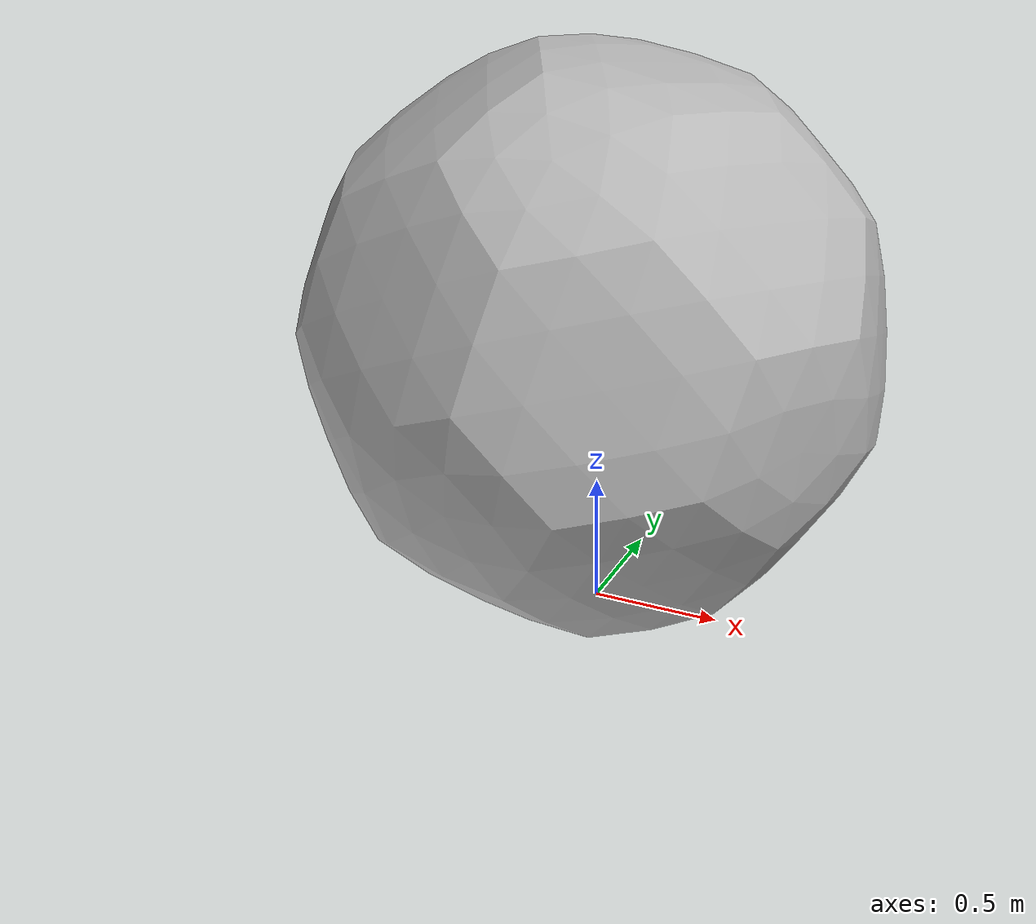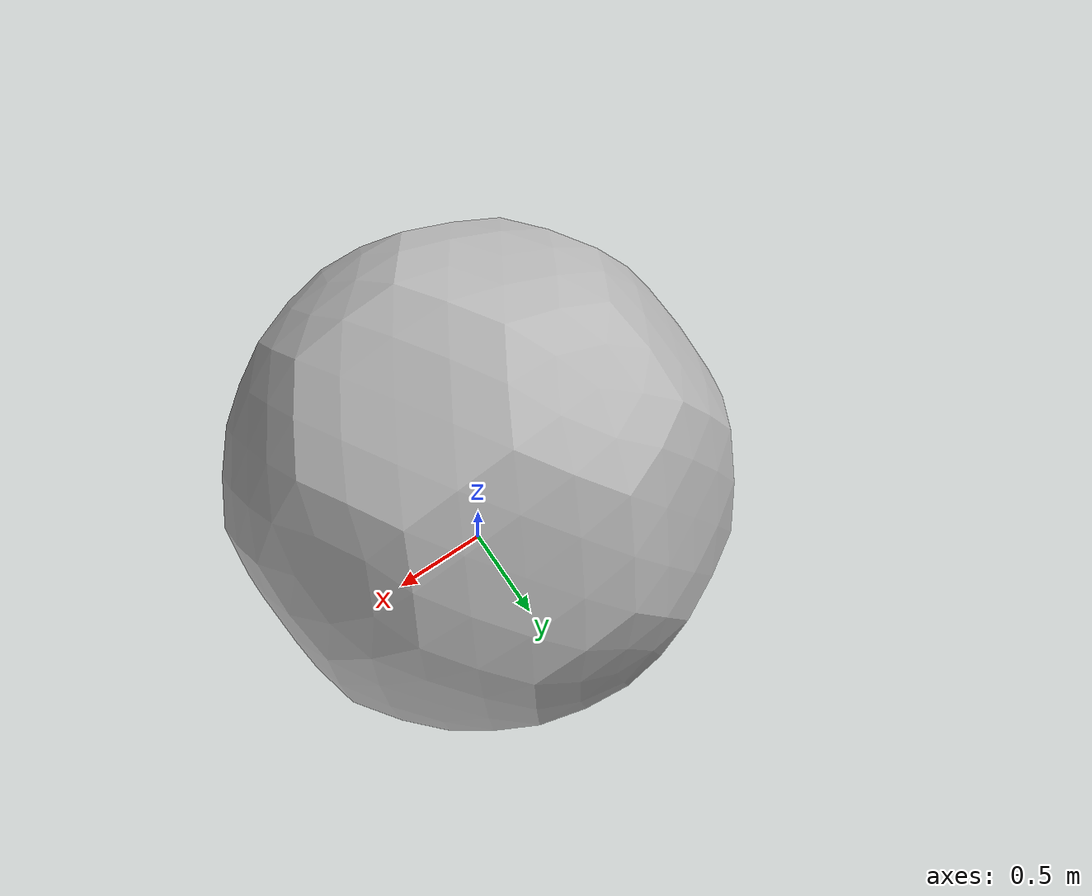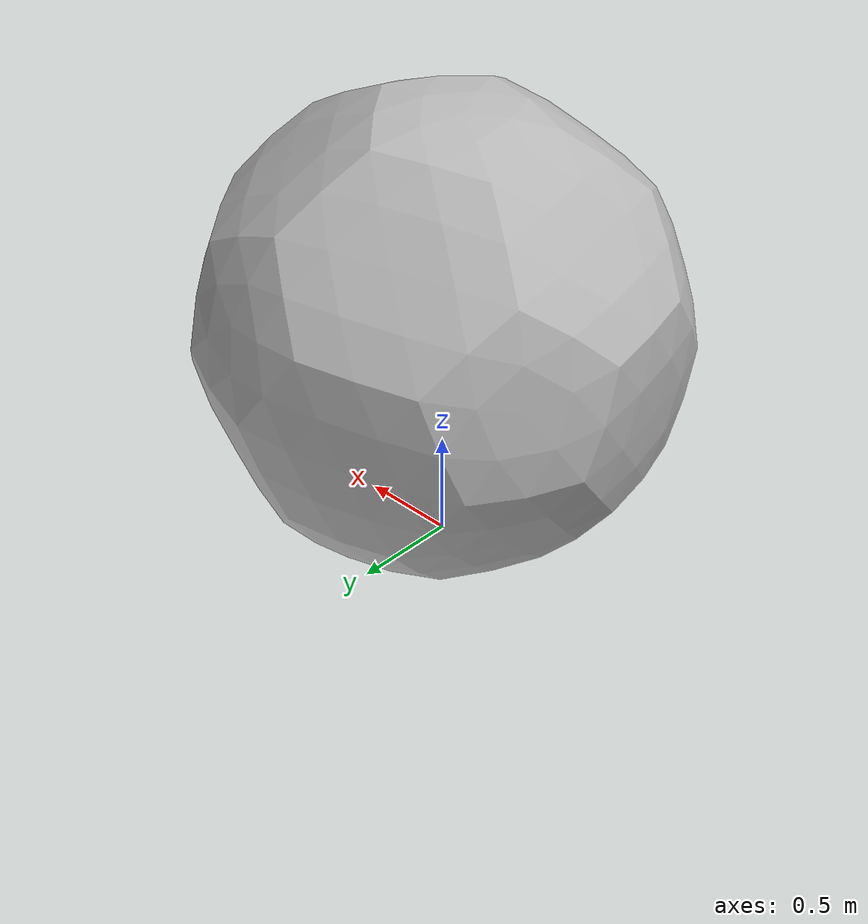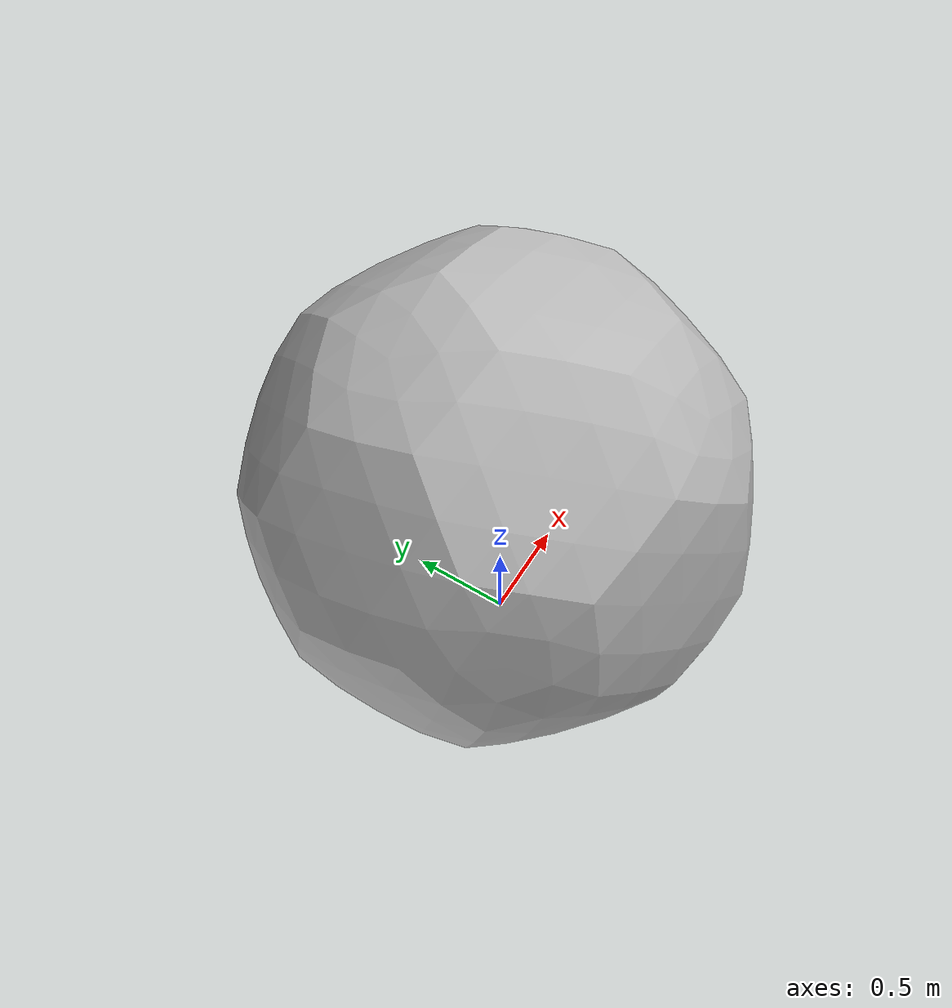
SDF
<?xml version='1.0'?>
<sdf version='1.4'>
<!-- mass 0.41kg  -->
<!-- inertia 3.2e-03kg m^2 -->

<model name='football'>
      <static>0</static>
      <link name='ball'>
        <pose>0 0 1.1 0 -0 0</pose>
        <inertial>
          <mass>0.41</mass>
          <inertia>
            <ixx>3.2e-03</ixx>
            <iyy>3.2e-03</iyy>
            <izz>3.2e-03</izz>
            <ixy>0</ixy>
            <ixz>0</ixz>
            <iyz>0</iyz>
          </inertia>
        </inertial>
        <collision name='collision'>
          <geometry>
            <sphere>
              <radius>1.1</radius>
            </sphere>
          </geometry>
          <surface>
            <bounce>
              <restitution_coefficient>1</restitution_coefficient>
            </bounce>
            <friction>
              <ode>
                <mu>1</mu>
                <mu2>1</mu2>
              </ode>
            </friction>
            <contact>
              <ode/>
            </contact>
          </surface>
        </collision>
        <visual name='visual'>
          <geometry>
            <mesh>
              <scale>1.1 1.1 1.1</scale>
              <uri>meshes/ball.dae</uri>
            </mesh>
          </geometry>
        </visual>
        <velocity_decay>
          <linear>0.005</linear>
          <angular>0.005</angular>
        </velocity_decay>
        <gravity>1</gravity>
      </link>
      <pose>0 0 0 0 -0 0</pose>
    </model>
</sdf>
